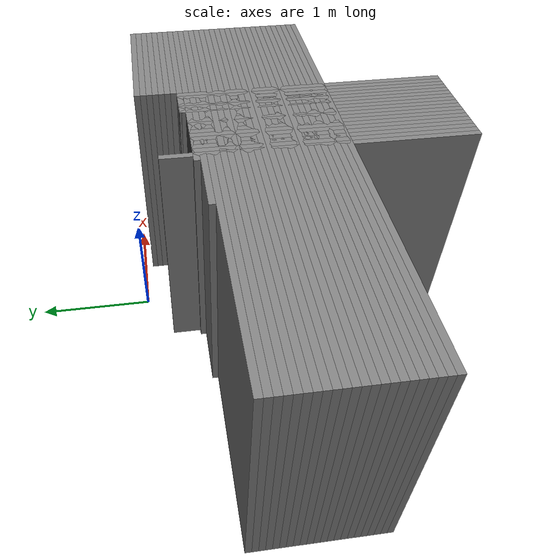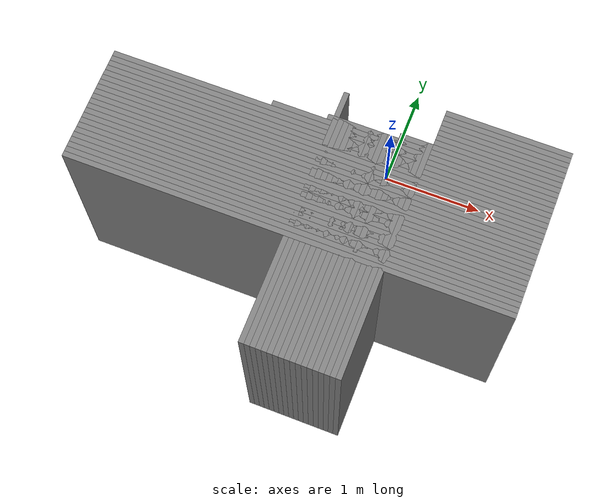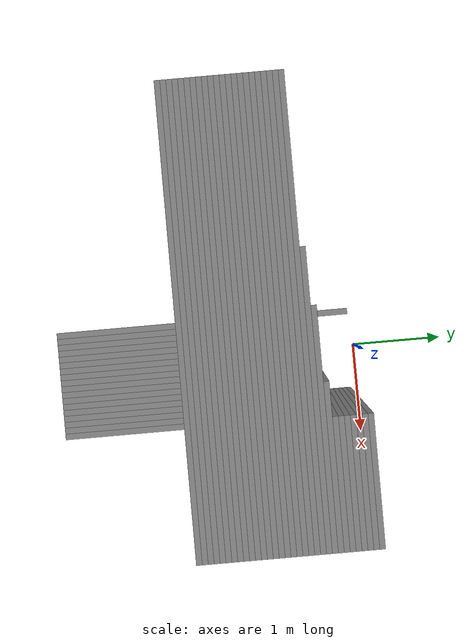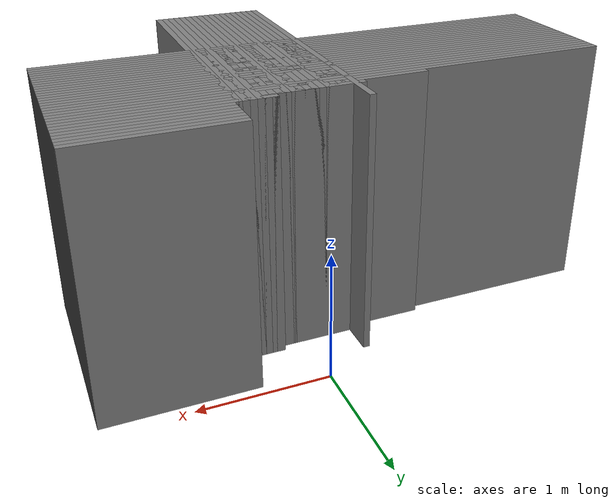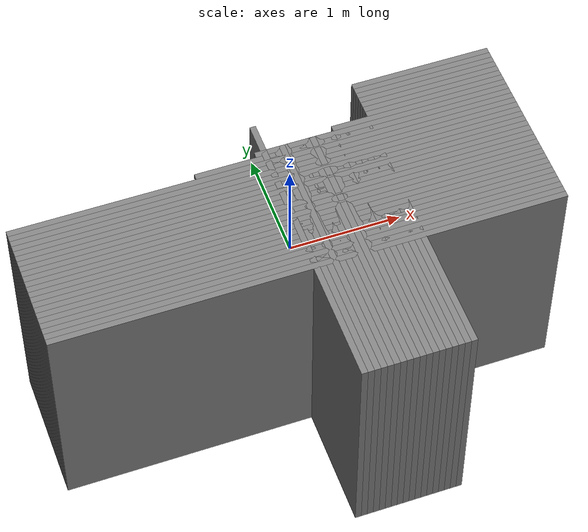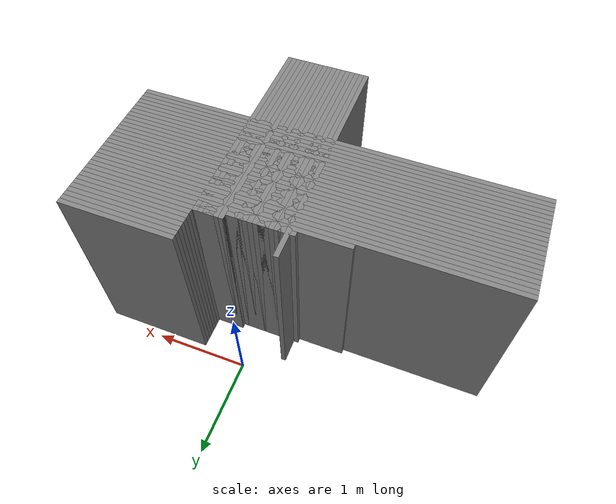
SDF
<sdf version="1.6">
 <model name="maze_map">
  <static>true</static>
  <link name="wall_101">
   <pose>1.06 -0.09999999999999964 1.0 0 0 0</pose>
   <collision name="collision">
    <geometry><box><size>1.1500000000000001 0.05 2.0</size></box></geometry>
   </collision>
   <visual name="visual">
    <geometry><box><size>1.1500000000000001 0.05 2.0</size></box></geometry>
    <material><ambient>0.3 0.3 0.3 1</ambient><diffuse>0.5 0.5 0.5 1</diffuse></material>
   </visual>
  </link>
  <link name="wall_103">
   <pose>1.06 -0.1499999999999999 1.0 0 0 0</pose>
   <collision name="collision">
    <geometry><box><size>1.1500000000000001 0.05 2.0</size></box></geometry>
   </collision>
   <visual name="visual">
    <geometry><box><size>1.1500000000000001 0.05 2.0</size></box></geometry>
    <material><ambient>0.3 0.3 0.3 1</ambient><diffuse>0.5 0.5 0.5 1</diffuse></material>
   </visual>
  </link>
  <link name="wall_105">
   <pose>1.06 -0.19999999999999973 1.0 0 0 0</pose>
   <collision name="collision">
    <geometry><box><size>1.1500000000000001 0.05 2.0</size></box></geometry>
   </collision>
   <visual name="visual">
    <geometry><box><size>1.1500000000000001 0.05 2.0</size></box></geometry>
    <material><ambient>0.3 0.3 0.3 1</ambient><diffuse>0.5 0.5 0.5 1</diffuse></material>
   </visual>
  </link>
  <link name="wall_107">
   <pose>1.06 -0.24999999999999956 1.0 0 0 0</pose>
   <collision name="collision">
    <geometry><box><size>1.1500000000000001 0.05 2.0</size></box></geometry>
   </collision>
   <visual name="visual">
    <geometry><box><size>1.1500000000000001 0.05 2.0</size></box></geometry>
    <material><ambient>0.3 0.3 0.3 1</ambient><diffuse>0.5 0.5 0.5 1</diffuse></material>
   </visual>
  </link>
  <link name="wall_109">
   <pose>1.06 -0.2999999999999998 1.0 0 0 0</pose>
   <collision name="collision">
    <geometry><box><size>1.1500000000000001 0.05 2.0</size></box></geometry>
   </collision>
   <visual name="visual">
    <geometry><box><size>1.1500000000000001 0.05 2.0</size></box></geometry>
    <material><ambient>0.3 0.3 0.3 1</ambient><diffuse>0.5 0.5 0.5 1</diffuse></material>
   </visual>
  </link>
  <link name="wall_111">
   <pose>1.06 -0.34999999999999964 1.0 0 0 0</pose>
   <collision name="collision">
    <geometry><box><size>1.1500000000000001 0.05 2.0</size></box></geometry>
   </collision>
   <visual name="visual">
    <geometry><box><size>1.1500000000000001 0.05 2.0</size></box></geometry>
    <material><ambient>0.3 0.3 0.3 1</ambient><diffuse>0.5 0.5 0.5 1</diffuse></material>
   </visual>
  </link>
  <link name="wall_113">
   <pose>1.06 -0.3999999999999999 1.0 0 0 0</pose>
   <collision name="collision">
    <geometry><box><size>1.1500000000000001 0.05 2.0</size></box></geometry>
   </collision>
   <visual name="visual">
    <geometry><box><size>1.1500000000000001 0.05 2.0</size></box></geometry>
    <material><ambient>0.3 0.3 0.3 1</ambient><diffuse>0.5 0.5 0.5 1</diffuse></material>
   </visual>
  </link>
  <link name="wall_115">
   <pose>0.9100000000000001 -0.44999999999999973 1.0 0 0 0</pose>
   <collision name="collision">
    <geometry><box><size>1.4500000000000002 0.05 2.0</size></box></geometry>
   </collision>
   <visual name="visual">
    <geometry><box><size>1.4500000000000002 0.05 2.0</size></box></geometry>
    <material><ambient>0.3 0.3 0.3 1</ambient><diffuse>0.5 0.5 0.5 1</diffuse></material>
   </visual>
  </link>
  <link name="wall_117">
   <pose>0.5850000000000004 -0.5 1.0 0 0 0</pose>
   <collision name="collision"><geometry><box><size>2.1 0.05 2.0</size></box></geometry></collision>
   <visual name="visual">
    <geometry><box><size>2.1 0.05 2.0</size></box></geometry>
    <material><ambient>0.3 0.3 0.3 1</ambient><diffuse>0.5 0.5 0.5 1</diffuse></material>
   </visual>
  </link>
  <link name="wall_119">
   <pose>0.3350000000000004 -0.5499999999999998 1.0 0 0 0</pose>
   <collision name="collision"><geometry><box><size>2.6 0.05 2.0</size></box></geometry></collision>
   <visual name="visual">
    <geometry><box><size>2.6 0.05 2.0</size></box></geometry>
    <material><ambient>0.3 0.3 0.3 1</ambient><diffuse>0.5 0.5 0.5 1</diffuse></material>
   </visual>
  </link>
  <link name="wall_120">
   <pose>-0.41500000000000004 -0.5999999999999996 1.0 0 0 0</pose>
   <collision name="collision">
    <geometry><box><size>4.1000000000000005 0.05 2.0</size></box></geometry>
   </collision>
   <visual name="visual">
    <geometry><box><size>4.1000000000000005 0.05 2.0</size></box></geometry>
    <material><ambient>0.3 0.3 0.3 1</ambient><diffuse>0.5 0.5 0.5 1</diffuse></material>
   </visual>
  </link>
  <link name="wall_121">
   <pose>-0.41500000000000004 -0.6499999999999999 1.0 0 0 0</pose>
   <collision name="collision">
    <geometry><box><size>4.1000000000000005 0.05 2.0</size></box></geometry>
   </collision>
   <visual name="visual">
    <geometry><box><size>4.1000000000000005 0.05 2.0</size></box></geometry>
    <material><ambient>0.3 0.3 0.3 1</ambient><diffuse>0.5 0.5 0.5 1</diffuse></material>
   </visual>
  </link>
  <link name="wall_122">
   <pose>-0.41500000000000004 -0.6999999999999997 1.0 0 0 0</pose>
   <collision name="collision">
    <geometry><box><size>4.1000000000000005 0.05 2.0</size></box></geometry>
   </collision>
   <visual name="visual">
    <geometry><box><size>4.1000000000000005 0.05 2.0</size></box></geometry>
    <material><ambient>0.3 0.3 0.3 1</ambient><diffuse>0.5 0.5 0.5 1</diffuse></material>
   </visual>
  </link>
  <link name="wall_123">
   <pose>-0.41500000000000004 -0.7499999999999998 1.0 0 0 0</pose>
   <collision name="collision">
    <geometry><box><size>4.1000000000000005 0.05 2.0</size></box></geometry>
   </collision>
   <visual name="visual">
    <geometry><box><size>4.1000000000000005 0.05 2.0</size></box></geometry>
    <material><ambient>0.3 0.3 0.3 1</ambient><diffuse>0.5 0.5 0.5 1</diffuse></material>
   </visual>
  </link>
  <link name="wall_124">
   <pose>-0.41500000000000004 -0.7999999999999998 1.0 0 0 0</pose>
   <collision name="collision">
    <geometry><box><size>4.1000000000000005 0.05 2.0</size></box></geometry>
   </collision>
   <visual name="visual">
    <geometry><box><size>4.1000000000000005 0.05 2.0</size></box></geometry>
    <material><ambient>0.3 0.3 0.3 1</ambient><diffuse>0.5 0.5 0.5 1</diffuse></material>
   </visual>
  </link>
  <link name="wall_125">
   <pose>-0.41500000000000004 -0.8499999999999999 1.0 0 0 0</pose>
   <collision name="collision">
    <geometry><box><size>4.1000000000000005 0.05 2.0</size></box></geometry>
   </collision>
   <visual name="visual">
    <geometry><box><size>4.1000000000000005 0.05 2.0</size></box></geometry>
    <material><ambient>0.3 0.3 0.3 1</ambient><diffuse>0.5 0.5 0.5 1</diffuse></material>
   </visual>
  </link>
  <link name="wall_126">
   <pose>-0.41500000000000004 -0.8999999999999999 1.0 0 0 0</pose>
   <collision name="collision">
    <geometry><box><size>4.1000000000000005 0.05 2.0</size></box></geometry>
   </collision>
   <visual name="visual">
    <geometry><box><size>4.1000000000000005 0.05 2.0</size></box></geometry>
    <material><ambient>0.3 0.3 0.3 1</ambient><diffuse>0.5 0.5 0.5 1</diffuse></material>
   </visual>
  </link>
  <link name="wall_127">
   <pose>-0.41500000000000004 -0.9499999999999997 1.0 0 0 0</pose>
   <collision name="collision">
    <geometry><box><size>4.1000000000000005 0.05 2.0</size></box></geometry>
   </collision>
   <visual name="visual">
    <geometry><box><size>4.1000000000000005 0.05 2.0</size></box></geometry>
    <material><ambient>0.3 0.3 0.3 1</ambient><diffuse>0.5 0.5 0.5 1</diffuse></material>
   </visual>
  </link>
  <link name="wall_128">
   <pose>-0.41500000000000004 -0.9999999999999998 1.0 0 0 0</pose>
   <collision name="collision">
    <geometry><box><size>4.1000000000000005 0.05 2.0</size></box></geometry>
   </collision>
   <visual name="visual">
    <geometry><box><size>4.1000000000000005 0.05 2.0</size></box></geometry>
    <material><ambient>0.3 0.3 0.3 1</ambient><diffuse>0.5 0.5 0.5 1</diffuse></material>
   </visual>
  </link>
  <link name="wall_129">
   <pose>-0.41500000000000004 -1.0499999999999998 1.0 0 0 0</pose>
   <collision name="collision">
    <geometry><box><size>4.1000000000000005 0.05 2.0</size></box></geometry>
   </collision>
   <visual name="visual">
    <geometry><box><size>4.1000000000000005 0.05 2.0</size></box></geometry>
    <material><ambient>0.3 0.3 0.3 1</ambient><diffuse>0.5 0.5 0.5 1</diffuse></material>
   </visual>
  </link>
  <link name="wall_130">
   <pose>-0.41500000000000004 -1.0999999999999999 1.0 0 0 0</pose>
   <collision name="collision">
    <geometry><box><size>4.1000000000000005 0.05 2.0</size></box></geometry>
   </collision>
   <visual name="visual">
    <geometry><box><size>4.1000000000000005 0.05 2.0</size></box></geometry>
    <material><ambient>0.3 0.3 0.3 1</ambient><diffuse>0.5 0.5 0.5 1</diffuse></material>
   </visual>
  </link>
  <link name="wall_131">
   <pose>-0.41500000000000004 -1.15 1.0 0 0 0</pose>
   <collision name="collision">
    <geometry><box><size>4.1000000000000005 0.05 2.0</size></box></geometry>
   </collision>
   <visual name="visual">
    <geometry><box><size>4.1000000000000005 0.05 2.0</size></box></geometry>
    <material><ambient>0.3 0.3 0.3 1</ambient><diffuse>0.5 0.5 0.5 1</diffuse></material>
   </visual>
  </link>
  <link name="wall_132">
   <pose>-0.41500000000000004 -1.1999999999999997 1.0 0 0 0</pose>
   <collision name="collision">
    <geometry><box><size>4.1000000000000005 0.05 2.0</size></box></geometry>
   </collision>
   <visual name="visual">
    <geometry><box><size>4.1000000000000005 0.05 2.0</size></box></geometry>
    <material><ambient>0.3 0.3 0.3 1</ambient><diffuse>0.5 0.5 0.5 1</diffuse></material>
   </visual>
  </link>
  <link name="wall_133">
   <pose>-0.41500000000000004 -1.2499999999999998 1.0 0 0 0</pose>
   <collision name="collision">
    <geometry><box><size>4.1000000000000005 0.05 2.0</size></box></geometry>
   </collision>
   <visual name="visual">
    <geometry><box><size>4.1000000000000005 0.05 2.0</size></box></geometry>
    <material><ambient>0.3 0.3 0.3 1</ambient><diffuse>0.5 0.5 0.5 1</diffuse></material>
   </visual>
  </link>
  <link name="wall_134">
   <pose>-0.41500000000000004 -1.2999999999999998 1.0 0 0 0</pose>
   <collision name="collision">
    <geometry><box><size>4.1000000000000005 0.05 2.0</size></box></geometry>
   </collision>
   <visual name="visual">
    <geometry><box><size>4.1000000000000005 0.05 2.0</size></box></geometry>
    <material><ambient>0.3 0.3 0.3 1</ambient><diffuse>0.5 0.5 0.5 1</diffuse></material>
   </visual>
  </link>
  <link name="wall_135">
   <pose>-0.41500000000000004 -1.3499999999999999 1.0 0 0 0</pose>
   <collision name="collision">
    <geometry><box><size>4.1000000000000005 0.05 2.0</size></box></geometry>
   </collision>
   <visual name="visual">
    <geometry><box><size>4.1000000000000005 0.05 2.0</size></box></geometry>
    <material><ambient>0.3 0.3 0.3 1</ambient><diffuse>0.5 0.5 0.5 1</diffuse></material>
   </visual>
  </link>
  <link name="wall_136">
   <pose>-0.41500000000000004 -1.4 1.0 0 0 0</pose>
   <collision name="collision">
    <geometry><box><size>4.1000000000000005 0.05 2.0</size></box></geometry>
   </collision>
   <visual name="visual">
    <geometry><box><size>4.1000000000000005 0.05 2.0</size></box></geometry>
    <material><ambient>0.3 0.3 0.3 1</ambient><diffuse>0.5 0.5 0.5 1</diffuse></material>
   </visual>
  </link>
  <link name="wall_137">
   <pose>-0.41500000000000004 -1.4499999999999997 1.0 0 0 0</pose>
   <collision name="collision">
    <geometry><box><size>4.1000000000000005 0.05 2.0</size></box></geometry>
   </collision>
   <visual name="visual">
    <geometry><box><size>4.1000000000000005 0.05 2.0</size></box></geometry>
    <material><ambient>0.3 0.3 0.3 1</ambient><diffuse>0.5 0.5 0.5 1</diffuse></material>
   </visual>
  </link>
  <link name="wall_138">
   <pose>-0.41500000000000004 -1.4999999999999998 1.0 0 0 0</pose>
   <collision name="collision">
    <geometry><box><size>4.1000000000000005 0.05 2.0</size></box></geometry>
   </collision>
   <visual name="visual">
    <geometry><box><size>4.1000000000000005 0.05 2.0</size></box></geometry>
    <material><ambient>0.3 0.3 0.3 1</ambient><diffuse>0.5 0.5 0.5 1</diffuse></material>
   </visual>
  </link>
  <link name="wall_139">
   <pose>-0.41500000000000004 -1.5499999999999998 1.0 0 0 0</pose>
   <collision name="collision">
    <geometry><box><size>4.1000000000000005 0.05 2.0</size></box></geometry>
   </collision>
   <visual name="visual">
    <geometry><box><size>4.1000000000000005 0.05 2.0</size></box></geometry>
    <material><ambient>0.3 0.3 0.3 1</ambient><diffuse>0.5 0.5 0.5 1</diffuse></material>
   </visual>
  </link>
  <link name="wall_140">
   <pose>-0.41500000000000004 -1.5999999999999999 1.0 0 0 0</pose>
   <collision name="collision">
    <geometry><box><size>4.1000000000000005 0.05 2.0</size></box></geometry>
   </collision>
   <visual name="visual">
    <geometry><box><size>4.1000000000000005 0.05 2.0</size></box></geometry>
    <material><ambient>0.3 0.3 0.3 1</ambient><diffuse>0.5 0.5 0.5 1</diffuse></material>
   </visual>
  </link>
  <link name="wall_141">
   <pose>-0.41500000000000004 -1.65 1.0 0 0 0</pose>
   <collision name="collision">
    <geometry><box><size>4.1000000000000005 0.05 2.0</size></box></geometry>
   </collision>
   <visual name="visual">
    <geometry><box><size>4.1000000000000005 0.05 2.0</size></box></geometry>
    <material><ambient>0.3 0.3 0.3 1</ambient><diffuse>0.5 0.5 0.5 1</diffuse></material>
   </visual>
  </link>
  <link name="wall_243">
   <pose>-0.3899999999999997 -1.4499999999999997 1.0 0 0 0</pose>
   <collision name="collision"><geometry><box><size>0.05 2.45 2.0</size></box></geometry></collision>
   <visual name="visual">
    <geometry><box><size>0.05 2.45 2.0</size></box></geometry>
    <material><ambient>0.3 0.3 0.3 1</ambient><diffuse>0.5 0.5 0.5 1</diffuse></material>
   </visual>
  </link>
  <link name="wall_245">
   <pose>-0.33999999999999986 -1.575 1.0 0 0 0</pose>
   <collision name="collision"><geometry><box><size>0.05 2.2 2.0</size></box></geometry></collision>
   <visual name="visual">
    <geometry><box><size>0.05 2.2 2.0</size></box></geometry>
    <material><ambient>0.3 0.3 0.3 1</ambient><diffuse>0.5 0.5 0.5 1</diffuse></material>
   </visual>
  </link>
  <link name="wall_248">
   <pose>-0.29000000000000004 -1.575 1.0 0 0 0</pose>
   <collision name="collision"><geometry><box><size>0.05 2.2 2.0</size></box></geometry></collision>
   <visual name="visual">
    <geometry><box><size>0.05 2.2 2.0</size></box></geometry>
    <material><ambient>0.3 0.3 0.3 1</ambient><diffuse>0.5 0.5 0.5 1</diffuse></material>
   </visual>
  </link>
  <link name="wall_251">
   <pose>-0.23999999999999977 -1.575 1.0 0 0 0</pose>
   <collision name="collision"><geometry><box><size>0.05 2.2 2.0</size></box></geometry></collision>
   <visual name="visual">
    <geometry><box><size>0.05 2.2 2.0</size></box></geometry>
    <material><ambient>0.3 0.3 0.3 1</ambient><diffuse>0.5 0.5 0.5 1</diffuse></material>
   </visual>
  </link>
  <link name="wall_253">
   <pose>-0.18999999999999995 -1.575 1.0 0 0 0</pose>
   <collision name="collision"><geometry><box><size>0.05 2.2 2.0</size></box></geometry></collision>
   <visual name="visual">
    <geometry><box><size>0.05 2.2 2.0</size></box></geometry>
    <material><ambient>0.3 0.3 0.3 1</ambient><diffuse>0.5 0.5 0.5 1</diffuse></material>
   </visual>
  </link>
  <link name="wall_255">
   <pose>-0.13999999999999968 -1.575 1.0 0 0 0</pose>
   <collision name="collision"><geometry><box><size>0.05 2.2 2.0</size></box></geometry></collision>
   <visual name="visual">
    <geometry><box><size>0.05 2.2 2.0</size></box></geometry>
    <material><ambient>0.3 0.3 0.3 1</ambient><diffuse>0.5 0.5 0.5 1</diffuse></material>
   </visual>
  </link>
  <link name="wall_257">
   <pose>-0.08999999999999986 -1.575 1.0 0 0 0</pose>
   <collision name="collision"><geometry><box><size>0.05 2.2 2.0</size></box></geometry></collision>
   <visual name="visual">
    <geometry><box><size>0.05 2.2 2.0</size></box></geometry>
    <material><ambient>0.3 0.3 0.3 1</ambient><diffuse>0.5 0.5 0.5 1</diffuse></material>
   </visual>
  </link>
  <link name="wall_259">
   <pose>-0.03999999999999959 -1.575 1.0 0 0 0</pose>
   <collision name="collision"><geometry><box><size>0.05 2.2 2.0</size></box></geometry></collision>
   <visual name="visual">
    <geometry><box><size>0.05 2.2 2.0</size></box></geometry>
    <material><ambient>0.3 0.3 0.3 1</ambient><diffuse>0.5 0.5 0.5 1</diffuse></material>
   </visual>
  </link>
  <link name="wall_261">
   <pose>0.010000000000000231 -1.575 1.0 0 0 0</pose>
   <collision name="collision"><geometry><box><size>0.05 2.2 2.0</size></box></geometry></collision>
   <visual name="visual">
    <geometry><box><size>0.05 2.2 2.0</size></box></geometry>
    <material><ambient>0.3 0.3 0.3 1</ambient><diffuse>0.5 0.5 0.5 1</diffuse></material>
   </visual>
  </link>
  <link name="wall_264">
   <pose>0.06000000000000005 -1.575 1.0 0 0 0</pose>
   <collision name="collision"><geometry><box><size>0.05 2.2 2.0</size></box></geometry></collision>
   <visual name="visual">
    <geometry><box><size>0.05 2.2 2.0</size></box></geometry>
    <material><ambient>0.3 0.3 0.3 1</ambient><diffuse>0.5 0.5 0.5 1</diffuse></material>
   </visual>
  </link>
  <link name="wall_267">
   <pose>0.11000000000000032 -1.575 1.0 0 0 0</pose>
   <collision name="collision"><geometry><box><size>0.05 2.2 2.0</size></box></geometry></collision>
   <visual name="visual">
    <geometry><box><size>0.05 2.2 2.0</size></box></geometry>
    <material><ambient>0.3 0.3 0.3 1</ambient><diffuse>0.5 0.5 0.5 1</diffuse></material>
   </visual>
  </link>
  <link name="wall_269">
   <pose>0.16000000000000014 -1.575 1.0 0 0 0</pose>
   <collision name="collision"><geometry><box><size>0.05 2.2 2.0</size></box></geometry></collision>
   <visual name="visual">
    <geometry><box><size>0.05 2.2 2.0</size></box></geometry>
    <material><ambient>0.3 0.3 0.3 1</ambient><diffuse>0.5 0.5 0.5 1</diffuse></material>
   </visual>
  </link>
  <link name="wall_271">
   <pose>0.2100000000000004 -1.5499999999999998 1.0 0 0 0</pose>
   <collision name="collision"><geometry><box><size>0.05 2.25 2.0</size></box></geometry></collision>
   <visual name="visual">
    <geometry><box><size>0.05 2.25 2.0</size></box></geometry>
    <material><ambient>0.3 0.3 0.3 1</ambient><diffuse>0.5 0.5 0.5 1</diffuse></material>
   </visual>
  </link>
  <link name="wall_273">
   <pose>0.26000000000000023 -1.5499999999999998 1.0 0 0 0</pose>
   <collision name="collision"><geometry><box><size>0.05 2.25 2.0</size></box></geometry></collision>
   <visual name="visual">
    <geometry><box><size>0.05 2.25 2.0</size></box></geometry>
    <material><ambient>0.3 0.3 0.3 1</ambient><diffuse>0.5 0.5 0.5 1</diffuse></material>
   </visual>
  </link>
  <link name="wall_275">
   <pose>0.31000000000000005 -1.5499999999999998 1.0 0 0 0</pose>
   <collision name="collision"><geometry><box><size>0.05 2.25 2.0</size></box></geometry></collision>
   <visual name="visual">
    <geometry><box><size>0.05 2.25 2.0</size></box></geometry>
    <material><ambient>0.3 0.3 0.3 1</ambient><diffuse>0.5 0.5 0.5 1</diffuse></material>
   </visual>
  </link>
  <link name="wall_277">
   <pose>0.3600000000000003 -1.5499999999999998 1.0 0 0 0</pose>
   <collision name="collision"><geometry><box><size>0.05 2.25 2.0</size></box></geometry></collision>
   <visual name="visual">
    <geometry><box><size>0.05 2.25 2.0</size></box></geometry>
    <material><ambient>0.3 0.3 0.3 1</ambient><diffuse>0.5 0.5 0.5 1</diffuse></material>
   </visual>
  </link>
  <link name="wall_279">
   <pose>0.41000000000000014 -1.5499999999999998 1.0 0 0 0</pose>
   <collision name="collision"><geometry><box><size>0.05 2.25 2.0</size></box></geometry></collision>
   <visual name="visual">
    <geometry><box><size>0.05 2.25 2.0</size></box></geometry>
    <material><ambient>0.3 0.3 0.3 1</ambient><diffuse>0.5 0.5 0.5 1</diffuse></material>
   </visual>
  </link>
  <link name="wall_281">
   <pose>0.4600000000000004 -1.5499999999999998 1.0 0 0 0</pose>
   <collision name="collision"><geometry><box><size>0.05 2.25 2.0</size></box></geometry></collision>
   <visual name="visual">
    <geometry><box><size>0.05 2.25 2.0</size></box></geometry>
    <material><ambient>0.3 0.3 0.3 1</ambient><diffuse>0.5 0.5 0.5 1</diffuse></material>
   </visual>
  </link>
 </model>
</sdf>
